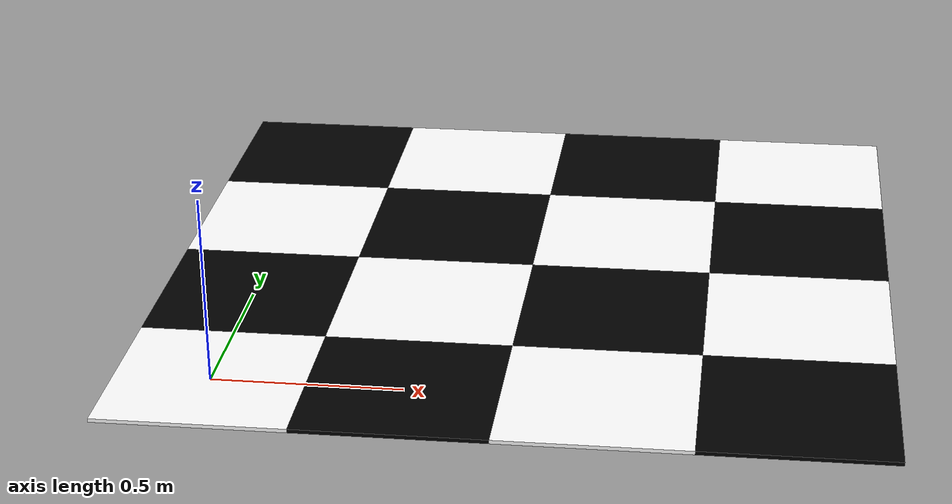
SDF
<?xml version="1.0" ?>
<sdf version="1.6">
<model name="checkerboard_ground">
  <static>true</static>

  <link name="tile_0_0"><pose>0 0 0.005 0 0 0</pose><visual name="vis"><geometry><box><size>0.5 0.5 0.01</size></box></geometry><material><ambient>1 1 1 1</ambient><diffuse>1 1 1 1</diffuse></material></visual></link>
  <link name="tile_0_1"><pose>0.5 0 0.005 0 0 0</pose><visual name="vis"><geometry><box><size>0.5 0.5 0.01</size></box></geometry><material><ambient>0 0 0 1</ambient><diffuse>0 0 0 1</diffuse></material></visual></link>
  <link name="tile_0_2"><pose>1.0 0 0.005 0 0 0</pose><visual name="vis"><geometry><box><size>0.5 0.5 0.01</size></box></geometry><material><ambient>1 1 1 1</ambient><diffuse>1 1 1 1</diffuse></material></visual></link>
  <link name="tile_0_3"><pose>1.5 0 0.005 0 0 0</pose><visual name="vis"><geometry><box><size>0.5 0.5 0.01</size></box></geometry><material><ambient>0 0 0 1</ambient><diffuse>0 0 0 1</diffuse></material></visual></link>

  <link name="tile_1_0"><pose>0 0.5 0.005 0 0 0</pose><visual name="vis"><geometry><box><size>0.5 0.5 0.01</size></box></geometry><material><ambient>0 0 0 1</ambient><diffuse>0 0 0 1</diffuse></material></visual></link>
  <link name="tile_1_1"><pose>0.5 0.5 0.005 0 0 0</pose><visual name="vis"><geometry><box><size>0.5 0.5 0.01</size></box></geometry><material><ambient>1 1 1 1</ambient><diffuse>1 1 1 1</diffuse></material></visual></link>
  <link name="tile_1_2"><pose>1.0 0.5 0.005 0 0 0</pose><visual name="vis"><geometry><box><size>0.5 0.5 0.01</size></box></geometry><material><ambient>0 0 0 1</ambient><diffuse>0 0 0 1</diffuse></material></visual></link>
  <link name="tile_1_3"><pose>1.5 0.5 0.005 0 0 0</pose><visual name="vis"><geometry><box><size>0.5 0.5 0.01</size></box></geometry><material><ambient>1 1 1 1</ambient><diffuse>1 1 1 1</diffuse></material></visual></link>

  <link name="tile_2_0"><pose>0 1.0 0.005 0 0 0</pose><visual name="vis"><geometry><box><size>0.5 0.5 0.01</size></box></geometry><material><ambient>1 1 1 1</ambient><diffuse>1 1 1 1</diffuse></material></visual></link>
  <link name="tile_2_1"><pose>0.5 1.0 0.005 0 0 0</pose><visual name="vis"><geometry><box><size>0.5 0.5 0.01</size></box></geometry><material><ambient>0 0 0 1</ambient><diffuse>0 0 0 1</diffuse></material></visual></link>
  <link name="tile_2_2"><pose>1.0 1.0 0.005 0 0 0</pose><visual name="vis"><geometry><box><size>0.5 0.5 0.01</size></box></geometry><material><ambient>1 1 1 1</ambient><diffuse>1 1 1 1</diffuse></material></visual></link>
  <link name="tile_2_3"><pose>1.5 1.0 0.005 0 0 0</pose><visual name="vis"><geometry><box><size>0.5 0.5 0.01</size></box></geometry><material><ambient>0 0 0 1</ambient><diffuse>0 0 0 1</diffuse></material></visual></link>

  <link name="tile_3_0"><pose>0 1.5 0.005 0 0 0</pose><visual name="vis"><geometry><box><size>0.5 0.5 0.01</size></box></geometry><material><ambient>0 0 0 1</ambient><diffuse>0 0 0 1</diffuse></material></visual></link>
  <link name="tile_3_1"><pose>0.5 1.5 0.005 0 0 0</pose><visual name="vis"><geometry><box><size>0.5 0.5 0.01</size></box></geometry><material><ambient>1 1 1 1</ambient><diffuse>1 1 1 1</diffuse></material></visual></link>
  <link name="tile_3_2"><pose>1.0 1.5 0.005 0 0 0</pose><visual name="vis"><geometry><box><size>0.5 0.5 0.01</size></box></geometry><material><ambient>0 0 0 1</ambient><diffuse>0 0 0 1</diffuse></material></visual></link>
  <link name="tile_3_3"><pose>1.5 1.5 0.005 0 0 0</pose><visual name="vis"><geometry><box><size>0.5 0.5 0.01</size></box></geometry><material><ambient>1 1 1 1</ambient><diffuse>1 1 1 1</diffuse></material></visual></link>
</model>
</sdf>
